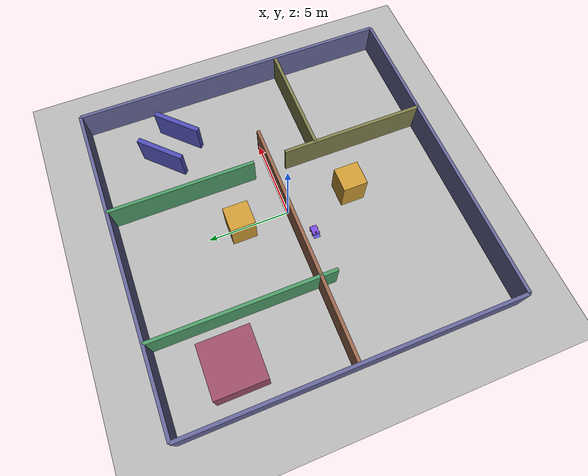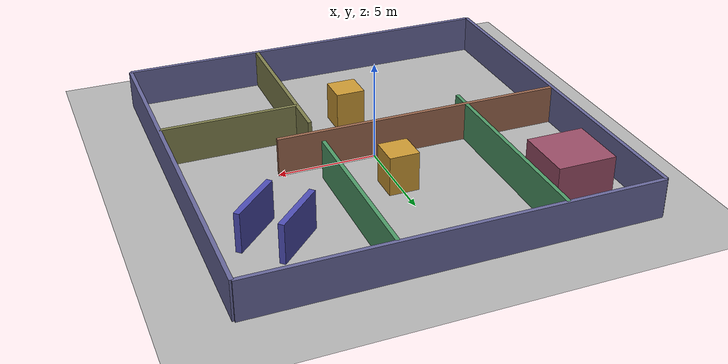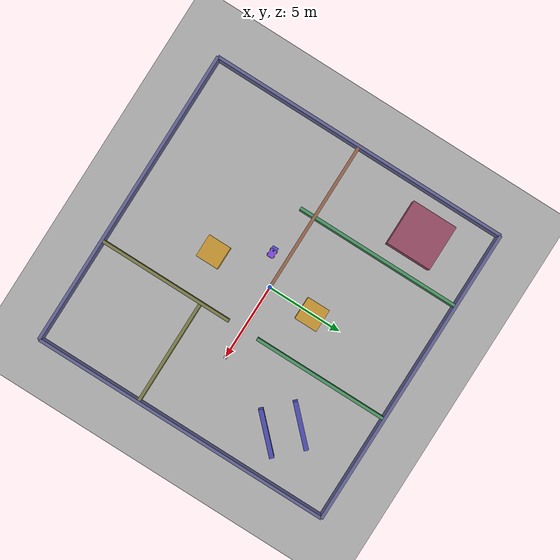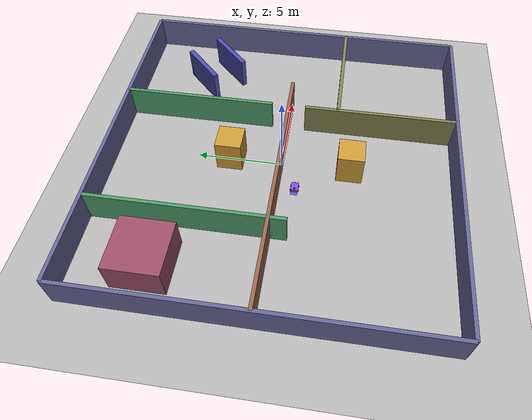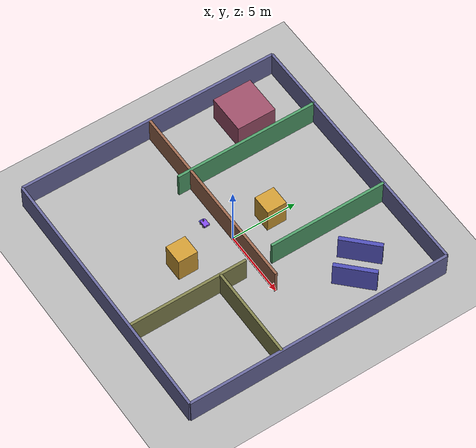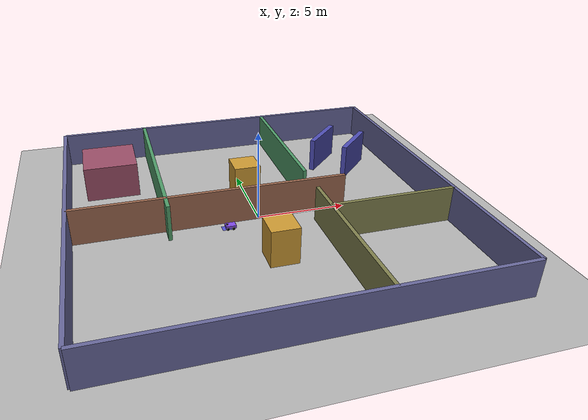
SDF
<?xml version="1.0" ?>
<sdf version='1.8'>
  <world name='maze'>

    <physics name="1ms" type="ignored">
      <max_step_size>0.001</max_step_size>
      <real_time_factor>1.0</real_time_factor>
    </physics>

    <plugin filename="libgz-sim-physics-system.so"
            name="gz::sim::systems::Physics"/>
    <plugin filename="libgz-sim-user-commands-system.so"
            name="gz::sim::systems::UserCommands"/>
    <plugin filename="libgz-sim-scene-broadcaster-system.so"
            name="gz::sim::systems::SceneBroadcaster"/>
    <plugin filename="gz-sim-sensors-system"
            name="gz::sim::systems::Sensors"/>

    <light name='sun' type='directional'>
      <pose>0 0 10 0 0 0</pose>
      <cast_shadows>true</cast_shadows>
      <intensity>1</intensity>
      <direction>-0.5 0.1 -0.9</direction>
      <diffuse>0.8 0.8 0.8 1</diffuse>
      <specular>0.2 0.2 0.2 1</specular>
    </light>

    <!-- Ground plane -->
    <model name='ground_plane'>
      <static>true</static>
      <link name='link'>
        <collision name='collision'>
          <geometry><plane><normal>0 0 1</normal><size>100 100</size></plane></geometry>
        </collision>
        <visual name='visual'>
          <geometry><plane><normal>0 0 1</normal><size>100 100</size></plane></geometry>
          <material>
            <ambient>0.7 0.7 0.7 1</ambient>
            <diffuse>0.7 0.7 0.7 1</diffuse>
          </material>
        </visual>
      </link>
    </model>

    <!-- Robot model — spawns automatically at startup -->
    <include>
      <uri>model://diff_drive_robot</uri>
      <pose>-2.0 -1.0 0.3 0 0 0</pose>
    </include>

    <!-- ===== OUTER BOUNDARY WALLS (20x20m arena) ===== -->
    <!-- North wall -->
    <model name='wall_north'><static>true</static><link name='link'>
      <pose>0 10 1 0 0 0</pose>
      <collision name='c'><geometry><box><size>20 0.2 2</size></box></geometry></collision>
      <visual name='v'><geometry><box><size>20 0.2 2</size></box></geometry>
        <material><ambient>0.4 0.4 0.6 1</ambient><diffuse>0.4 0.4 0.6 1</diffuse></material></visual>
    </link></model>

    <!-- South wall -->
    <model name='wall_south'><static>true</static><link name='link'>
      <pose>0 -10 1 0 0 0</pose>
      <collision name='c'><geometry><box><size>20 0.2 2</size></box></geometry></collision>
      <visual name='v'><geometry><box><size>20 0.2 2</size></box></geometry>
        <material><ambient>0.4 0.4 0.6 1</ambient><diffuse>0.4 0.4 0.6 1</diffuse></material></visual>
    </link></model>

    <!-- East wall -->
    <model name='wall_east'><static>true</static><link name='link'>
      <pose>10 0 1 0 0 0</pose>
      <collision name='c'><geometry><box><size>0.2 20 2</size></box></geometry></collision>
      <visual name='v'><geometry><box><size>0.2 20 2</size></box></geometry>
        <material><ambient>0.4 0.4 0.6 1</ambient><diffuse>0.4 0.4 0.6 1</diffuse></material></visual>
    </link></model>

    <!-- West wall -->
    <model name='wall_west'><static>true</static><link name='link'>
      <pose>-10 0 1 0 0 0</pose>
      <collision name='c'><geometry><box><size>0.2 20 2</size></box></geometry></collision>
      <visual name='v'><geometry><box><size>0.2 20 2</size></box></geometry>
        <material><ambient>0.4 0.4 0.6 1</ambient><diffuse>0.4 0.4 0.6 1</diffuse></material></visual>
    </link></model>

    <!-- ===== INTERIOR WALLS — ROOM DIVIDERS ===== -->

    <!-- Horizontal divider: splits arena into top/bottom halves, gap on right -->
    <model name='h_div_left'><static>true</static><link name='link'>
      <pose>-2.5 0 1 0 0 0</pose>
      <collision name='c'><geometry><box><size>15 0.2 2</size></box></geometry></collision>
      <visual name='v'><geometry><box><size>15 0.2 2</size></box></geometry>
        <material><ambient>0.6 0.4 0.3 1</ambient><diffuse>0.6 0.4 0.3 1</diffuse></material></visual>
    </link></model>

    <!-- Vertical divider: left side corridor, gap at bottom -->
    <model name='v_div_left'><static>true</static><link name='link'>
      <pose>-5 4.5 1 0 0 0</pose>
      <collision name='c'><geometry><box><size>0.2 11 2</size></box></geometry></collision>
      <visual name='v'><geometry><box><size>0.2 11 2</size></box></geometry>
        <material><ambient>0.3 0.6 0.4 1</ambient><diffuse>0.3 0.6 0.4 1</diffuse></material></visual>
    </link></model>

    <!-- Vertical divider: right side, top half only -->
    <model name='v_div_right_top'><static>true</static><link name='link'>
      <pose>3 5.5 1 0 0 0</pose>
      <collision name='c'><geometry><box><size>0.2 9 2</size></box></geometry></collision>
      <visual name='v'><geometry><box><size>0.2 9 2</size></box></geometry>
        <material><ambient>0.3 0.6 0.4 1</ambient><diffuse>0.3 0.6 0.4 1</diffuse></material></visual>
    </link></model>

    <!-- Bottom-right room: vertical wall -->
    <model name='br_wall_v'><static>true</static><link name='link'>
      <pose>3 -5.5 1 0 0 0</pose>
      <collision name='c'><geometry><box><size>0.2 9 2</size></box></geometry></collision>
      <visual name='v'><geometry><box><size>0.2 9 2</size></box></geometry>
        <material><ambient>0.5 0.5 0.3 1</ambient><diffuse>0.5 0.5 0.3 1</diffuse></material></visual>
    </link></model>

    <!-- Bottom-right room: horizontal wall, gap on left -->
    <model name='br_wall_h'><static>true</static><link name='link'>
      <pose>6.5 -3 1 0 0 0</pose>
      <collision name='c'><geometry><box><size>7 0.2 2</size></box></geometry></collision>
      <visual name='v'><geometry><box><size>7 0.2 2</size></box></geometry>
        <material><ambient>0.5 0.5 0.3 1</ambient><diffuse>0.5 0.5 0.3 1</diffuse></material></visual>
    </link></model>

    <!-- Narrow corridor: top-left box -->
    <model name='tl_box'><static>true</static><link name='link'>
      <pose>-7.5 6 1 0 0 0</pose>
      <collision name='c'><geometry><box><size>3 3 2</size></box></geometry></collision>
      <visual name='v'><geometry><box><size>3 3 2</size></box></geometry>
        <material><ambient>0.6 0.3 0.4 1</ambient><diffuse>0.6 0.3 0.4 1</diffuse></material></visual>
    </link></model>

    <!-- Central pillar cluster -->
    <model name='pillar_a'><static>true</static><link name='link'>
      <pose>0 3 1 0 0 0</pose>
      <collision name='c'><geometry><box><size>1.5 1.5 2</size></box></geometry></collision>
      <visual name='v'><geometry><box><size>1.5 1.5 2</size></box></geometry>
        <material><ambient>0.8 0.6 0.2 1</ambient><diffuse>0.8 0.6 0.2 1</diffuse></material></visual>
    </link></model>

    <model name='pillar_b'><static>true</static><link name='link'>
      <pose>0 -4 1 0 0 0</pose>
      <collision name='c'><geometry><box><size>1.5 1.5 2</size></box></geometry></collision>
      <visual name='v'><geometry><box><size>1.5 1.5 2</size></box></geometry>
        <material><ambient>0.8 0.6 0.2 1</ambient><diffuse>0.8 0.6 0.2 1</diffuse></material></visual>
    </link></model>

    <!-- Diagonal obstacle block (top-right area) -->
    <model name='diag_block_1'><static>true</static><link name='link'>
      <pose>6 6 1 0 0 0.785</pose>
      <collision name='c'><geometry><box><size>3 0.3 2</size></box></geometry></collision>
      <visual name='v'><geometry><box><size>3 0.3 2</size></box></geometry>
        <material><ambient>0.3 0.3 0.7 1</ambient><diffuse>0.3 0.3 0.7 1</diffuse></material></visual>
    </link></model>

    <model name='diag_block_2'><static>true</static><link name='link'>
      <pose>7.5 4.5 1 0 0 0.785</pose>
      <collision name='c'><geometry><box><size>3 0.3 2</size></box></geometry></collision>
      <visual name='v'><geometry><box><size>3 0.3 2</size></box></geometry>
        <material><ambient>0.3 0.3 0.7 1</ambient><diffuse>0.3 0.3 0.7 1</diffuse></material></visual>
    </link></model>

  </world>
</sdf>

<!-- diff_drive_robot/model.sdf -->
<sdf version='1.11'>
  <model name='diff_drive_robot'>
    <link name='base_link'>
      <inertial>
        <pose>0.18765432098765439 0 0.069753086419753099 0 0 0</pose>
        <mass>0.80999999999999994</mass>
        <inertia>
          <ixx>0.020275617283950619</ixx>
          <ixy>0</ixy>
          <ixz>0.003364969135802471</ixz>
          <iyy>0.02315449366571997</iyy>
          <iyz>5.3918941048656562e-20</iyz>
          <izz>0.036646543371317043</izz>
        </inertia>
      </inertial>
      <collision name='base_link_fixed_joint_lump__base_footprint_collision'>
        <pose>0 0 -0.050000000000000003 0 0 0</pose>
        <geometry>
          <box>
            <size>0.55000000000000004 0.40000000000000002 0.01</size>
          </box>
        </geometry>
      </collision>
      <collision name='base_link_fixed_joint_lump__camera_link_collision_1'>
        <pose>0.45000000000000001 0 0.14999999999999999 0 0 0</pose>
        <geometry>
          <box>
            <size>0.029999999999999999 0.059999999999999998 0.029999999999999999</size>
          </box>
        </geometry>
        <surface>
          <contact>
            <ode/>
          </contact>
          <friction>
            <ode/>
          </friction>
        </surface>
      </collision>
      <collision name='base_link_fixed_joint_lump__chassis_collision_2'>
        <pose>0.17499999999999999 0 0.074999999999999997 0 0 0</pose>
        <geometry>
          <box>
            <size>0.55000000000000004 0.34000000000000002 0.14999999999999999</size>
          </box>
        </geometry>
        <surface>
          <contact>
            <ode/>
          </contact>
          <friction>
            <ode>
              <mu>1</mu>
              <mu2>1</mu2>
            </ode>
          </friction>
        </surface>
      </collision>
      <collision name='base_link_fixed_joint_lump__laser_frame_collision_3'>
        <pose>0 0 0.17499999999999999 0 0 0</pose>
        <geometry>
          <cylinder>
            <length>0.040000000000000001</length>
            <radius>0.050000000000000003</radius>
          </cylinder>
        </geometry>
        <surface>
          <contact>
            <ode/>
          </contact>
          <friction>
            <ode/>
          </friction>
        </surface>
      </collision>
      <collision name='base_link_fixed_joint_lump__left_front_wheel_collision_4'>
        <pose>0.29999999999999999 0.22500000000000001 0 -1.5700000000000001 0 0</pose>
        <geometry>
          <cylinder>
            <length>0.040000000000000001</length>
            <radius>0.074999999999999997</radius>
          </cylinder>
        </geometry>
        <surface>
          <contact>
            <ode/>
          </contact>
          <friction>
            <ode>
              <mu>9.9999999999999995e-07</mu>
              <mu2>9.9999999999999995e-07</mu2>
            </ode>
          </friction>
        </surface>
      </collision>
      <collision name='base_link_fixed_joint_lump__right_front_wheel_collision_5'>
        <pose>0.29999999999999999 -0.22500000000000001 0 1.5700000000000001 0 0</pose>
        <geometry>
          <cylinder>
            <length>0.040000000000000001</length>
            <radius>0.074999999999999997</radius>
          </cylinder>
        </geometry>
        <surface>
          <contact>
            <ode/>
          </contact>
          <friction>
            <ode>
              <mu>9.9999999999999995e-07</mu>
              <mu2>9.9999999999999995e-07</mu2>
            </ode>
          </friction>
        </surface>
      </collision>
      <visual name='base_link_fixed_joint_lump__base_footprint_visual'>
        <pose>0 0 -0.050000000000000003 0 0 0</pose>
        <geometry>
          <box>
            <size>0.55000000000000004 0.40000000000000002 0.01</size>
          </box>
        </geometry>
        <material>
          <diffuse>0 0 1 0.5</diffuse>
          <ambient>0 0 1 0.5</ambient>
        </material>
      </visual>
      <visual name='base_link_fixed_joint_lump__camera_link_visual_1'>
        <pose>0.45000000000000001 0 0.14999999999999999 0 0 0</pose>
        <geometry>
          <box>
            <size>0.029999999999999999 0.059999999999999998 0.029999999999999999</size>
          </box>
        </geometry>
        <material>
          <diffuse>0.125 0.125 0.125 1</diffuse>
          <ambient>0.125 0.125 0.125 1</ambient>
        </material>
      </visual>
      <visual name='base_link_fixed_joint_lump__chassis_visual_2'>
        <pose>0.17499999999999999 0 0.074999999999999997 0 0 0</pose>
        <geometry>
          <box>
            <size>0.55000000000000004 0.40000000000000002 0.14999999999999999</size>
          </box>
        </geometry>
        <material>
          <diffuse>0.5 0.287499994 0.900000036 1</diffuse>
          <ambient>0.5 0.287499994 0.900000036 1</ambient>
        </material>
      </visual>
      <visual name='base_link_fixed_joint_lump__laser_frame_visual_3'>
        <pose>0 0 0.17499999999999999 0 0 0</pose>
        <geometry>
          <cylinder>
            <length>0.040000000000000001</length>
            <radius>0.050000000000000003</radius>
          </cylinder>
        </geometry>
        <material>
          <diffuse>0.162499994 0.162499994 0.162499994 1</diffuse>
          <ambient>0.162499994 0.162499994 0.162499994 1</ambient>
        </material>
      </visual>
      <visual name='base_link_fixed_joint_lump__left_front_wheel_visual_4'>
        <pose>0.29999999999999999 0.22500000000000001 0 -1.5700000000000001 0 0</pose>
        <geometry>
          <cylinder>
            <length>0.040000000000000001</length>
            <radius>0.074999999999999997</radius>
          </cylinder>
        </geometry>
        <material>
          <diffuse>0 0 0 1</diffuse>
          <ambient>0 0 0 1</ambient>
        </material>
      </visual>
      <visual name='base_link_fixed_joint_lump__right_front_wheel_visual_5'>
        <pose>0.29999999999999999 -0.22500000000000001 0 1.5700000000000001 0 0</pose>
        <geometry>
          <cylinder>
            <length>0.040000000000000001</length>
            <radius>0.074999999999999997</radius>
          </cylinder>
        </geometry>
        <material>
          <diffuse>0 0 0 1</diffuse>
          <ambient>0 0 0 1</ambient>
        </material>
      </visual>
      <sensor name='camera' type='camera'>
        <always_on>true</always_on>
        <update_rate>30</update_rate>
        <topic>camera/image_raw</topic>
        <camera>
          <horizontal_fov>1.0469999999999999</horizontal_fov>
          <image>
            <width>640</width>
            <height>480</height>
            <format>R8G8B8</format>
          </image>
          <clip>
            <near>0.050000000000000003</near>
            <far>8</far>
          </clip>
          <noise>
            <type>gaussian</type>
            <mean>0</mean>
            <stddev>0.0070000000000000001</stddev>
          </noise>
        </camera>
        <pose>0.45000000000000001 0 0.14999999999999999 0 0 0</pose>
        <gz_frame_id>camera_optical_frame</gz_frame_id>
      </sensor>
      <sensor name='laser' type='gpu_lidar'>
        <always_on>true</always_on>
        <visualize>true</visualize>
        <update_rate>10</update_rate>
        <topic>/scan</topic>
        <lidar>
          <scan>
            <horizontal>
              <samples>360</samples>
              <min_angle>-3.1400000000000001</min_angle>
              <max_angle>3.1400000000000001</max_angle>
              <resolution>1</resolution>
            </horizontal>
          </scan>
          <range>
            <min>0.29999999999999999</min>
            <max>12</max>
          </range>
        </lidar>
        <pose>0 0 0.17499999999999999 0 0 0</pose>
        <gz_frame_id>laser_frame</gz_frame_id>
      </sensor>
    </link>
    <joint name='left_wheel_joint' type='revolute'>
      <pose relative_to='base_link'>0 0.22500000000000001 0 -1.5700000000000001 0 0</pose>
      <parent>base_link</parent>
      <child>left_wheel</child>
      <axis>
        <xyz>0 0 1</xyz>
        <limit>
          <lower>-inf</lower>
          <upper>inf</upper>
        </limit>
        <dynamics>
          <spring_reference>0</spring_reference>
          <spring_stiffness>0</spring_stiffness>
        </dynamics>
      </axis>
    </joint>
    <link name='left_wheel'>
      <pose relative_to='left_wheel_joint'>0 0 0 0 0 0</pose>
      <inertial>
        <pose>0 0 0 0 0 0</pose>
        <mass>0.10000000000000001</mass>
        <inertia>
          <ixx>0.00015395833333333331</ixx>
          <ixy>0</ixy>
          <ixz>0</ixz>
          <iyy>0.00015395833333333331</iyy>
          <iyz>0</iyz>
          <izz>0.00028124999999999998</izz>
        </inertia>
      </inertial>
      <collision name='left_wheel_collision'>
        <pose>0 0 0 0 0 0</pose>
        <geometry>
          <cylinder>
            <length>0.040000000000000001</length>
            <radius>0.074999999999999997</radius>
          </cylinder>
        </geometry>
        <surface>
          <contact>
            <ode/>
          </contact>
          <friction>
            <ode>
              <mu>1</mu>
              <mu2>1</mu2>
            </ode>
          </friction>
        </surface>
      </collision>
      <visual name='left_wheel_visual'>
        <pose>0 0 0 0 0 0</pose>
        <geometry>
          <cylinder>
            <length>0.040000000000000001</length>
            <radius>0.074999999999999997</radius>
          </cylinder>
        </geometry>
        <material>
          <diffuse>0 0 0 1</diffuse>
          <ambient>0 0 0 1</ambient>
        </material>
      </visual>
    </link>
    <joint name='right_wheel_joint' type='revolute'>
      <pose relative_to='base_link'>0 -0.22500000000000001 0 1.5700000000000001 0 0</pose>
      <parent>base_link</parent>
      <child>right_wheel</child>
      <axis>
        <xyz>0 0 -1</xyz>
        <limit>
          <lower>-inf</lower>
          <upper>inf</upper>
        </limit>
        <dynamics>
          <spring_reference>0</spring_reference>
          <spring_stiffness>0</spring_stiffness>
        </dynamics>
      </axis>
    </joint>
    <link name='right_wheel'>
      <pose relative_to='right_wheel_joint'>0 0 0 0 0 0</pose>
      <inertial>
        <pose>0 0 0 0 0 0</pose>
        <mass>0.10000000000000001</mass>
        <inertia>
          <ixx>0.00015395833333333331</ixx>
          <ixy>0</ixy>
          <ixz>0</ixz>
          <iyy>0.00015395833333333331</iyy>
          <iyz>0</iyz>
          <izz>0.00028124999999999998</izz>
        </inertia>
      </inertial>
      <collision name='right_wheel_collision'>
        <pose>0 0 0 0 0 0</pose>
        <geometry>
          <cylinder>
            <length>0.040000000000000001</length>
            <radius>0.074999999999999997</radius>
          </cylinder>
        </geometry>
        <surface>
          <contact>
            <ode/>
          </contact>
          <friction>
            <ode>
              <mu>1</mu>
              <mu2>1</mu2>
            </ode>
          </friction>
        </surface>
      </collision>
      <visual name='right_wheel_visual'>
        <pose>0 0 0 0 0 0</pose>
        <geometry>
          <cylinder>
            <length>0.040000000000000001</length>
            <radius>0.074999999999999997</radius>
          </cylinder>
        </geometry>
        <material>
          <diffuse>0 0 0 1</diffuse>
          <ambient>0 0 0 1</ambient>
        </material>
      </visual>
    </link>
    <plugin name='gz::sim::systems::DiffDrive' filename='libgz-sim-diff-drive-system'>
      <left_joint>left_wheel_joint</left_joint>
      <right_joint>right_wheel_joint</right_joint>
      <wheel_separation>0.45</wheel_separation>
      <wheel_radius>0.075</wheel_radius>
      <odom_publish_frequency>50</odom_publish_frequency>
      <topic>cmd_vel</topic>
      <wheel_acceleration>1.0</wheel_acceleration>
      <wheel_torque>10.0</wheel_torque>
      <max_linear_speed>2.0</max_linear_speed>
      <max_angular_speed>3.14</max_angular_speed>
      <odom_topic>odom</odom_topic>
      <frame_id>odom</frame_id>
      <child_frame_id>base_link</child_frame_id>
      <tf_topic>/tf</tf_topic>
      <debug>true</debug>
      <debug_topic>drive_debug</debug_topic>
    </plugin>
    <plugin name='gz::sim::systems::JointStatePublisher' filename='gz-sim-joint-state-publisher-system'>
      <topic>joint_states</topic>
      <joint_name>right_wheel_joint</joint_name>
      <joint_name>left_wheel_joint</joint_name>
      <joint_name>left_front_wheel_joint</joint_name>
      <joint_name>right_front_wheel_joint</joint_name>
    </plugin>
    <frame name='base_footprint_joint' attached_to='base_link'>
      <pose>0 0 -0.050000000000000003 0 0 0</pose>
    </frame>
    <frame name='base_footprint' attached_to='base_footprint_joint'>
      <pose>0 0 0 0 0 0</pose>
    </frame>
    <frame name='camera_optical_joint' attached_to='camera_link'>
      <pose>0 0 0 -1.5708 -5.5511151231257827e-17 -1.5708</pose>
    </frame>
    <frame name='camera_optical_frame' attached_to='camera_optical_joint'>
      <pose>0 0 0 0 0 0</pose>
    </frame>
    <frame name='camera_joint' attached_to='base_link'>
      <pose>0.45000000000000001 0 0.14999999999999999 0 0 0</pose>
    </frame>
    <frame name='camera_link' attached_to='camera_joint'>
      <pose>0 0 0 0 0 0</pose>
    </frame>
    <frame name='laser_joint' attached_to='chassis'>
      <pose>0.10000000000000001 0 0.17499999999999999 0 0 0</pose>
    </frame>
    <frame name='laser_frame' attached_to='laser_joint'>
      <pose>0 0 0 0 0 0</pose>
    </frame>
    <frame name='chassis_joint' attached_to='base_link'>
      <pose>-0.10000000000000001 0 0 0 0 0</pose>
    </frame>
    <frame name='chassis' attached_to='chassis_joint'>
      <pose>0 0 0 0 0 0</pose>
    </frame>
    <frame name='left_front_wheel_joint' attached_to='base_link'>
      <pose>0.29999999999999999 0.22500000000000001 0 -1.5700000000000001 0 0</pose>
    </frame>
    <frame name='left_front_wheel' attached_to='left_front_wheel_joint'>
      <pose>0 0 0 0 0 0</pose>
    </frame>
    <frame name='right_front_wheel_joint' attached_to='base_link'>
      <pose>0.29999999999999999 -0.22500000000000001 0 1.5700000000000001 0 0</pose>
    </frame>
    <frame name='right_front_wheel' attached_to='right_front_wheel_joint'>
      <pose>0 0 0 0 0 0</pose>
    </frame>
  </model>
</sdf>
